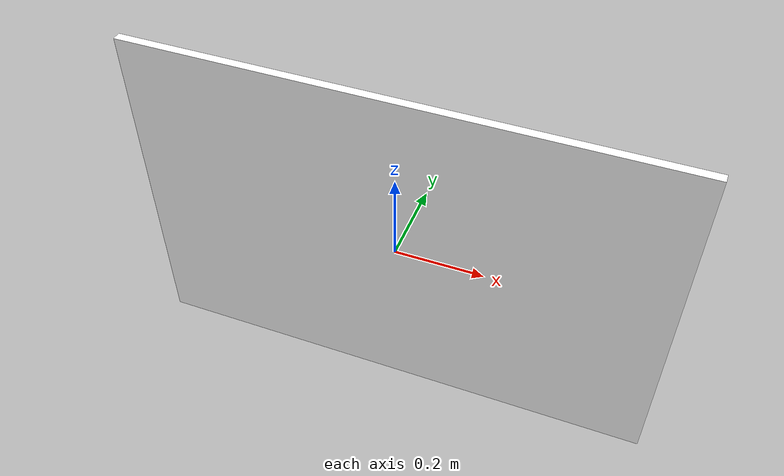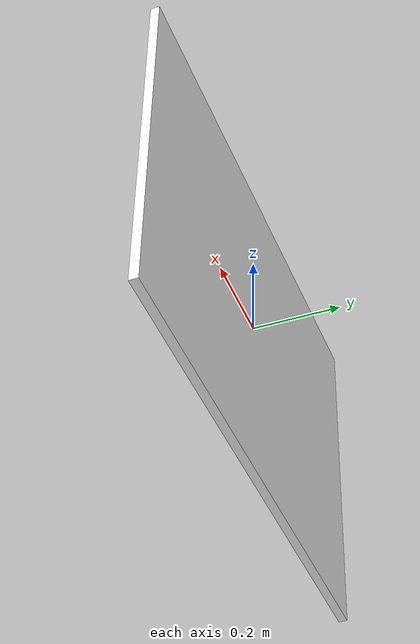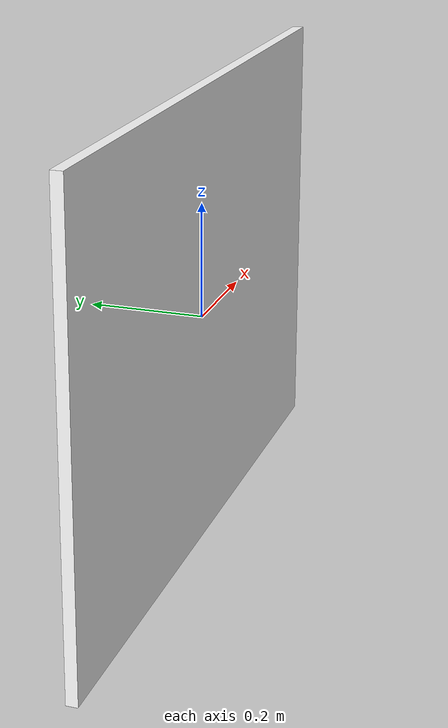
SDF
<?xml version="1.0" ?>
<sdf version="1.8">
  <model name="cone_poster">
    <static>true</static>

    <link name="link">

      <!-- Visual tipo "panel" (más robusto que plane con texturas en gz-sim) -->
      <visual name="poster_visual">

        <!-- Panel fino -->
        <geometry>
          <box>
            <size>1.2 0.02 0.8</size>
          </box>
        </geometry>

        <!-- Orientación: que mire al robot (frontal).
             Con yaw=0 y pose en world (2,0,0.6) suele bastar.
             Si lo ves de canto, prueba yaw=1.5708 en el world. -->
        <pose>0 0 0 0 0 0</pose>

        <material>
          <double_sided>true</double_sided>

          <!-- Fallback clásico (evita negro si PBR falla) -->
          <ambient>1 1 1 1</ambient>
          <diffuse>1 1 1 1</diffuse>
          <specular>0.05 0.05 0.05 1</specular>

          <!-- PBR -->
          <pbr>
            <metal>
              <albedo_map>model://cone_poster/materials/textures/cone.png</albedo_map>
              <metalness>0.0</metalness>
              <roughness>1.0</roughness>
            </metal>
          </pbr>
        </material>

      </visual>

      <!-- Collision opcional (no hace falta, pero ayuda a depurar) -->
      <collision name="poster_collision">
        <geometry>
          <box>
            <size>1.2 0.02 0.8</size>
          </box>
        </geometry>
      </collision>

    </link>
  </model>
</sdf>
